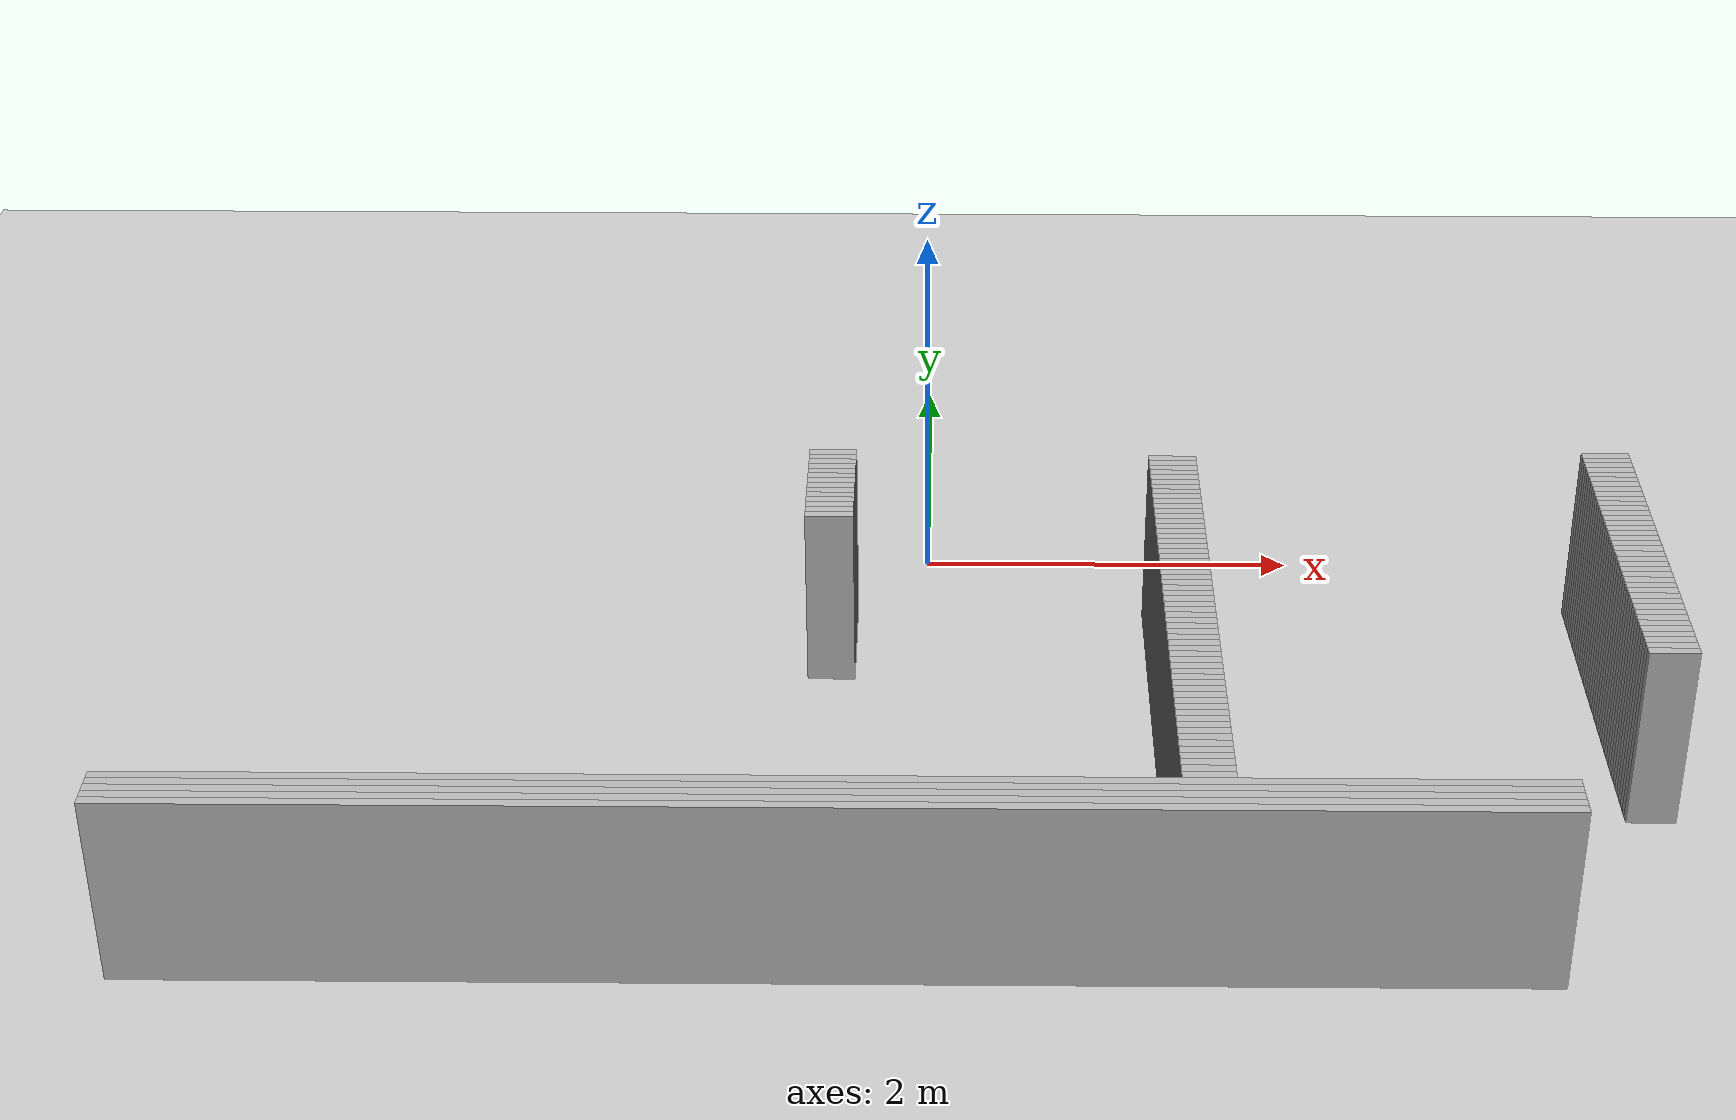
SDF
<sdf version="1.6">
 <world name="maze">
  <include><uri>model://ground_plane</uri></include>
  <include><uri>model://sun</uri></include>
  <model name="wall_63_85">
   <static>true</static>
   <pose>-0.5 -0.5 0.5 0 0 0</pose>
   <link name="link">
    <collision name="collision"><geometry><box><size>0.25 0.05 1.0</size></box></geometry></collision>
    <visual name="visual"><geometry><box><size>0.25 0.05 1.0</size></box></geometry></visual>
   </link>
  </model>
  <model name="wall_145_85">
   <static>true</static>
   <pose>3.6 -0.5 0.5 0 0 0</pose>
   <link name="link">
    <collision name="collision"><geometry><box><size>0.25 0.05 1.0</size></box></geometry></collision>
    <visual name="visual"><geometry><box><size>0.25 0.05 1.0</size></box></geometry></visual>
   </link>
  </model>
  <model name="wall_63_86">
   <static>true</static>
   <pose>-0.5 -0.55 0.5 0 0 0</pose>
   <link name="link">
    <collision name="collision"><geometry><box><size>0.25 0.05 1.0</size></box></geometry></collision>
    <visual name="visual"><geometry><box><size>0.25 0.05 1.0</size></box></geometry></visual>
   </link>
  </model>
  <model name="wall_99_86">
   <static>true</static>
   <pose>1.3 -0.55 0.5 0 0 0</pose>
   <link name="link">
    <collision name="collision"><geometry><box><size>0.25 0.05 1.0</size></box></geometry></collision>
    <visual name="visual"><geometry><box><size>0.25 0.05 1.0</size></box></geometry></visual>
   </link>
  </model>
  <model name="wall_145_86">
   <static>true</static>
   <pose>3.6 -0.55 0.5 0 0 0</pose>
   <link name="link">
    <collision name="collision"><geometry><box><size>0.25 0.05 1.0</size></box></geometry></collision>
    <visual name="visual"><geometry><box><size>0.25 0.05 1.0</size></box></geometry></visual>
   </link>
  </model>
  <model name="wall_63_87">
   <static>true</static>
   <pose>-0.5 -0.6000000000000001 0.5 0 0 0</pose>
   <link name="link">
    <collision name="collision"><geometry><box><size>0.25 0.05 1.0</size></box></geometry></collision>
    <visual name="visual"><geometry><box><size>0.25 0.05 1.0</size></box></geometry></visual>
   </link>
  </model>
  <model name="wall_99_87">
   <static>true</static>
   <pose>1.3 -0.6000000000000001 0.5 0 0 0</pose>
   <link name="link">
    <collision name="collision"><geometry><box><size>0.25 0.05 1.0</size></box></geometry></collision>
    <visual name="visual"><geometry><box><size>0.25 0.05 1.0</size></box></geometry></visual>
   </link>
  </model>
  <model name="wall_145_87">
   <static>true</static>
   <pose>3.6 -0.6000000000000001 0.5 0 0 0</pose>
   <link name="link">
    <collision name="collision"><geometry><box><size>0.25 0.05 1.0</size></box></geometry></collision>
    <visual name="visual"><geometry><box><size>0.25 0.05 1.0</size></box></geometry></visual>
   </link>
  </model>
  <model name="wall_63_88">
   <static>true</static>
   <pose>-0.5 -0.65 0.5 0 0 0</pose>
   <link name="link">
    <collision name="collision"><geometry><box><size>0.25 0.05 1.0</size></box></geometry></collision>
    <visual name="visual"><geometry><box><size>0.25 0.05 1.0</size></box></geometry></visual>
   </link>
  </model>
  <model name="wall_99_88">
   <static>true</static>
   <pose>1.3 -0.65 0.5 0 0 0</pose>
   <link name="link">
    <collision name="collision"><geometry><box><size>0.25 0.05 1.0</size></box></geometry></collision>
    <visual name="visual"><geometry><box><size>0.25 0.05 1.0</size></box></geometry></visual>
   </link>
  </model>
  <model name="wall_145_88">
   <static>true</static>
   <pose>3.6 -0.65 0.5 0 0 0</pose>
   <link name="link">
    <collision name="collision"><geometry><box><size>0.25 0.05 1.0</size></box></geometry></collision>
    <visual name="visual"><geometry><box><size>0.25 0.05 1.0</size></box></geometry></visual>
   </link>
  </model>
  <model name="wall_63_89">
   <static>true</static>
   <pose>-0.5 -0.7000000000000001 0.5 0 0 0</pose>
   <link name="link">
    <collision name="collision"><geometry><box><size>0.25 0.05 1.0</size></box></geometry></collision>
    <visual name="visual"><geometry><box><size>0.25 0.05 1.0</size></box></geometry></visual>
   </link>
  </model>
  <model name="wall_99_89">
   <static>true</static>
   <pose>1.3 -0.7000000000000001 0.5 0 0 0</pose>
   <link name="link">
    <collision name="collision"><geometry><box><size>0.25 0.05 1.0</size></box></geometry></collision>
    <visual name="visual"><geometry><box><size>0.25 0.05 1.0</size></box></geometry></visual>
   </link>
  </model>
  <model name="wall_145_89">
   <static>true</static>
   <pose>3.6 -0.7000000000000001 0.5 0 0 0</pose>
   <link name="link">
    <collision name="collision"><geometry><box><size>0.25 0.05 1.0</size></box></geometry></collision>
    <visual name="visual"><geometry><box><size>0.25 0.05 1.0</size></box></geometry></visual>
   </link>
  </model>
  <model name="wall_63_90">
   <static>true</static>
   <pose>-0.5 -0.75 0.5 0 0 0</pose>
   <link name="link">
    <collision name="collision"><geometry><box><size>0.25 0.05 1.0</size></box></geometry></collision>
    <visual name="visual"><geometry><box><size>0.25 0.05 1.0</size></box></geometry></visual>
   </link>
  </model>
  <model name="wall_99_90">
   <static>true</static>
   <pose>1.3 -0.75 0.5 0 0 0</pose>
   <link name="link">
    <collision name="collision"><geometry><box><size>0.25 0.05 1.0</size></box></geometry></collision>
    <visual name="visual"><geometry><box><size>0.25 0.05 1.0</size></box></geometry></visual>
   </link>
  </model>
  <model name="wall_145_90">
   <static>true</static>
   <pose>3.6 -0.75 0.5 0 0 0</pose>
   <link name="link">
    <collision name="collision"><geometry><box><size>0.25 0.05 1.0</size></box></geometry></collision>
    <visual name="visual"><geometry><box><size>0.25 0.05 1.0</size></box></geometry></visual>
   </link>
  </model>
  <model name="wall_63_91">
   <static>true</static>
   <pose>-0.5 -0.8 0.5 0 0 0</pose>
   <link name="link">
    <collision name="collision"><geometry><box><size>0.25 0.05 1.0</size></box></geometry></collision>
    <visual name="visual"><geometry><box><size>0.25 0.05 1.0</size></box></geometry></visual>
   </link>
  </model>
  <model name="wall_99_91">
   <static>true</static>
   <pose>1.3 -0.8 0.5 0 0 0</pose>
   <link name="link">
    <collision name="collision"><geometry><box><size>0.25 0.05 1.0</size></box></geometry></collision>
    <visual name="visual"><geometry><box><size>0.25 0.05 1.0</size></box></geometry></visual>
   </link>
  </model>
  <model name="wall_145_91">
   <static>true</static>
   <pose>3.6 -0.8 0.5 0 0 0</pose>
   <link name="link">
    <collision name="collision"><geometry><box><size>0.25 0.05 1.0</size></box></geometry></collision>
    <visual name="visual"><geometry><box><size>0.25 0.05 1.0</size></box></geometry></visual>
   </link>
  </model>
  <model name="wall_63_92">
   <static>true</static>
   <pose>-0.5 -0.8500000000000001 0.5 0 0 0</pose>
   <link name="link">
    <collision name="collision"><geometry><box><size>0.25 0.05 1.0</size></box></geometry></collision>
    <visual name="visual"><geometry><box><size>0.25 0.05 1.0</size></box></geometry></visual>
   </link>
  </model>
  <model name="wall_99_92">
   <static>true</static>
   <pose>1.3 -0.8500000000000001 0.5 0 0 0</pose>
   <link name="link">
    <collision name="collision"><geometry><box><size>0.25 0.05 1.0</size></box></geometry></collision>
    <visual name="visual"><geometry><box><size>0.25 0.05 1.0</size></box></geometry></visual>
   </link>
  </model>
  <model name="wall_145_92">
   <static>true</static>
   <pose>3.6 -0.8500000000000001 0.5 0 0 0</pose>
   <link name="link">
    <collision name="collision"><geometry><box><size>0.25 0.05 1.0</size></box></geometry></collision>
    <visual name="visual"><geometry><box><size>0.25 0.05 1.0</size></box></geometry></visual>
   </link>
  </model>
  <model name="wall_63_93">
   <static>true</static>
   <pose>-0.5 -0.9 0.5 0 0 0</pose>
   <link name="link">
    <collision name="collision"><geometry><box><size>0.25 0.05 1.0</size></box></geometry></collision>
    <visual name="visual"><geometry><box><size>0.25 0.05 1.0</size></box></geometry></visual>
   </link>
  </model>
  <model name="wall_99_93">
   <static>true</static>
   <pose>1.3 -0.9 0.5 0 0 0</pose>
   <link name="link">
    <collision name="collision"><geometry><box><size>0.25 0.05 1.0</size></box></geometry></collision>
    <visual name="visual"><geometry><box><size>0.25 0.05 1.0</size></box></geometry></visual>
   </link>
  </model>
  <model name="wall_145_93">
   <static>true</static>
   <pose>3.6 -0.9 0.5 0 0 0</pose>
   <link name="link">
    <collision name="collision"><geometry><box><size>0.25 0.05 1.0</size></box></geometry></collision>
    <visual name="visual"><geometry><box><size>0.25 0.05 1.0</size></box></geometry></visual>
   </link>
  </model>
  <model name="wall_63_94">
   <static>true</static>
   <pose>-0.5 -0.9500000000000001 0.5 0 0 0</pose>
   <link name="link">
    <collision name="collision"><geometry><box><size>0.25 0.05 1.0</size></box></geometry></collision>
    <visual name="visual"><geometry><box><size>0.25 0.05 1.0</size></box></geometry></visual>
   </link>
  </model>
  <model name="wall_99_94">
   <static>true</static>
   <pose>1.3 -0.9500000000000001 0.5 0 0 0</pose>
   <link name="link">
    <collision name="collision"><geometry><box><size>0.25 0.05 1.0</size></box></geometry></collision>
    <visual name="visual"><geometry><box><size>0.25 0.05 1.0</size></box></geometry></visual>
   </link>
  </model>
  <model name="wall_145_94">
   <static>true</static>
   <pose>3.6 -0.9500000000000001 0.5 0 0 0</pose>
   <link name="link">
    <collision name="collision"><geometry><box><size>0.25 0.05 1.0</size></box></geometry></collision>
    <visual name="visual"><geometry><box><size>0.25 0.05 1.0</size></box></geometry></visual>
   </link>
  </model>
  <model name="wall_63_95">
   <static>true</static>
   <pose>-0.5 -1.0 0.5 0 0 0</pose>
   <link name="link">
    <collision name="collision"><geometry><box><size>0.25 0.05 1.0</size></box></geometry></collision>
    <visual name="visual"><geometry><box><size>0.25 0.05 1.0</size></box></geometry></visual>
   </link>
  </model>
  <model name="wall_99_95">
   <static>true</static>
   <pose>1.3 -1.0 0.5 0 0 0</pose>
   <link name="link">
    <collision name="collision"><geometry><box><size>0.25 0.05 1.0</size></box></geometry></collision>
    <visual name="visual"><geometry><box><size>0.25 0.05 1.0</size></box></geometry></visual>
   </link>
  </model>
  <model name="wall_145_95">
   <static>true</static>
   <pose>3.6 -1.0 0.5 0 0 0</pose>
   <link name="link">
    <collision name="collision"><geometry><box><size>0.25 0.05 1.0</size></box></geometry></collision>
    <visual name="visual"><geometry><box><size>0.25 0.05 1.0</size></box></geometry></visual>
   </link>
  </model>
  <model name="wall_63_96">
   <static>true</static>
   <pose>-0.5 -1.05 0.5 0 0 0</pose>
   <link name="link">
    <collision name="collision"><geometry><box><size>0.25 0.05 1.0</size></box></geometry></collision>
    <visual name="visual"><geometry><box><size>0.25 0.05 1.0</size></box></geometry></visual>
   </link>
  </model>
  <model name="wall_99_96">
   <static>true</static>
   <pose>1.3 -1.05 0.5 0 0 0</pose>
   <link name="link">
    <collision name="collision"><geometry><box><size>0.25 0.05 1.0</size></box></geometry></collision>
    <visual name="visual"><geometry><box><size>0.25 0.05 1.0</size></box></geometry></visual>
   </link>
  </model>
  <model name="wall_145_96">
   <static>true</static>
   <pose>3.6 -1.05 0.5 0 0 0</pose>
   <link name="link">
    <collision name="collision"><geometry><box><size>0.25 0.05 1.0</size></box></geometry></collision>
    <visual name="visual"><geometry><box><size>0.25 0.05 1.0</size></box></geometry></visual>
   </link>
  </model>
  <model name="wall_63_97">
   <static>true</static>
   <pose>-0.5 -1.1 0.5 0 0 0</pose>
   <link name="link">
    <collision name="collision"><geometry><box><size>0.25 0.05 1.0</size></box></geometry></collision>
    <visual name="visual"><geometry><box><size>0.25 0.05 1.0</size></box></geometry></visual>
   </link>
  </model>
  <model name="wall_99_97">
   <static>true</static>
   <pose>1.3 -1.1 0.5 0 0 0</pose>
   <link name="link">
    <collision name="collision"><geometry><box><size>0.25 0.05 1.0</size></box></geometry></collision>
    <visual name="visual"><geometry><box><size>0.25 0.05 1.0</size></box></geometry></visual>
   </link>
  </model>
  <model name="wall_145_97">
   <static>true</static>
   <pose>3.6 -1.1 0.5 0 0 0</pose>
   <link name="link">
    <collision name="collision"><geometry><box><size>0.25 0.05 1.0</size></box></geometry></collision>
    <visual name="visual"><geometry><box><size>0.25 0.05 1.0</size></box></geometry></visual>
   </link>
  </model>
  <model name="wall_63_98">
   <static>true</static>
   <pose>-0.5 -1.1500000000000001 0.5 0 0 0</pose>
   <link name="link">
    <collision name="collision"><geometry><box><size>0.25 0.05 1.0</size></box></geometry></collision>
    <visual name="visual"><geometry><box><size>0.25 0.05 1.0</size></box></geometry></visual>
   </link>
  </model>
  <model name="wall_99_98">
   <static>true</static>
   <pose>1.3 -1.1500000000000001 0.5 0 0 0</pose>
   <link name="link">
    <collision name="collision"><geometry><box><size>0.25 0.05 1.0</size></box></geometry></collision>
    <visual name="visual"><geometry><box><size>0.25 0.05 1.0</size></box></geometry></visual>
   </link>
  </model>
  <model name="wall_145_98">
   <static>true</static>
   <pose>3.6 -1.1500000000000001 0.5 0 0 0</pose>
   <link name="link">
    <collision name="collision"><geometry><box><size>0.25 0.05 1.0</size></box></geometry></collision>
    <visual name="visual"><geometry><box><size>0.25 0.05 1.0</size></box></geometry></visual>
   </link>
  </model>
  <model name="wall_99_99">
   <static>true</static>
   <pose>1.3 -1.2000000000000002 0.5 0 0 0</pose>
   <link name="link">
    <collision name="collision"><geometry><box><size>0.25 0.05 1.0</size></box></geometry></collision>
    <visual name="visual"><geometry><box><size>0.25 0.05 1.0</size></box></geometry></visual>
   </link>
  </model>
  <model name="wall_145_99">
   <static>true</static>
   <pose>3.6 -1.2000000000000002 0.5 0 0 0</pose>
   <link name="link">
    <collision name="collision"><geometry><box><size>0.25 0.05 1.0</size></box></geometry></collision>
    <visual name="visual"><geometry><box><size>0.25 0.05 1.0</size></box></geometry></visual>
   </link>
  </model>
  <model name="wall_99_100">
   <static>true</static>
   <pose>1.3 -1.25 0.5 0 0 0</pose>
   <link name="link">
    <collision name="collision"><geometry><box><size>0.25 0.05 1.0</size></box></geometry></collision>
    <visual name="visual"><geometry><box><size>0.25 0.05 1.0</size></box></geometry></visual>
   </link>
  </model>
  <model name="wall_145_100">
   <static>true</static>
   <pose>3.6 -1.25 0.5 0 0 0</pose>
   <link name="link">
    <collision name="collision"><geometry><box><size>0.25 0.05 1.0</size></box></geometry></collision>
    <visual name="visual"><geometry><box><size>0.25 0.05 1.0</size></box></geometry></visual>
   </link>
  </model>
  <model name="wall_99_101">
   <static>true</static>
   <pose>1.3 -1.3 0.5 0 0 0</pose>
   <link name="link">
    <collision name="collision"><geometry><box><size>0.25 0.05 1.0</size></box></geometry></collision>
    <visual name="visual"><geometry><box><size>0.25 0.05 1.0</size></box></geometry></visual>
   </link>
  </model>
  <model name="wall_145_101">
   <static>true</static>
   <pose>3.6 -1.3 0.5 0 0 0</pose>
   <link name="link">
    <collision name="collision"><geometry><box><size>0.25 0.05 1.0</size></box></geometry></collision>
    <visual name="visual"><geometry><box><size>0.25 0.05 1.0</size></box></geometry></visual>
   </link>
  </model>
  <model name="wall_99_102">
   <static>true</static>
   <pose>1.3 -1.35 0.5 0 0 0</pose>
   <link name="link">
    <collision name="collision"><geometry><box><size>0.25 0.05 1.0</size></box></geometry></collision>
    <visual name="visual"><geometry><box><size>0.25 0.05 1.0</size></box></geometry></visual>
   </link>
  </model>
  <model name="wall_145_102">
   <static>true</static>
   <pose>3.6 -1.35 0.5 0 0 0</pose>
   <link name="link">
    <collision name="collision"><geometry><box><size>0.25 0.05 1.0</size></box></geometry></collision>
    <visual name="visual"><geometry><box><size>0.25 0.05 1.0</size></box></geometry></visual>
   </link>
  </model>
  <model name="wall_99_103">
   <static>true</static>
   <pose>1.3 -1.4000000000000001 0.5 0 0 0</pose>
   <link name="link">
    <collision name="collision"><geometry><box><size>0.25 0.05 1.0</size></box></geometry></collision>
    <visual name="visual"><geometry><box><size>0.25 0.05 1.0</size></box></geometry></visual>
   </link>
  </model>
  <model name="wall_145_103">
   <static>true</static>
   <pose>3.6 -1.4000000000000001 0.5 0 0 0</pose>
   <link name="link">
    <collision name="collision"><geometry><box><size>0.25 0.05 1.0</size></box></geometry></collision>
    <visual name="visual"><geometry><box><size>0.25 0.05 1.0</size></box></geometry></visual>
   </link>
  </model>
  <model name="wall_99_104">
   <static>true</static>
   <pose>1.3 -1.4500000000000002 0.5 0 0 0</pose>
   <link name="link">
    <collision name="collision"><geometry><box><size>0.25 0.05 1.0</size></box></geometry></collision>
    <visual name="visual"><geometry><box><size>0.25 0.05 1.0</size></box></geometry></visual>
   </link>
  </model>
  <model name="wall_145_104">
   <static>true</static>
   <pose>3.6 -1.4500000000000002 0.5 0 0 0</pose>
   <link name="link">
    <collision name="collision"><geometry><box><size>0.25 0.05 1.0</size></box></geometry></collision>
    <visual name="visual"><geometry><box><size>0.25 0.05 1.0</size></box></geometry></visual>
   </link>
  </model>
  <model name="wall_99_105">
   <static>true</static>
   <pose>1.3 -1.5 0.5 0 0 0</pose>
   <link name="link">
    <collision name="collision"><geometry><box><size>0.25 0.05 1.0</size></box></geometry></collision>
    <visual name="visual"><geometry><box><size>0.25 0.05 1.0</size></box></geometry></visual>
   </link>
  </model>
  <model name="wall_145_105">
   <static>true</static>
   <pose>3.6 -1.5 0.5 0 0 0</pose>
   <link name="link">
    <collision name="collision"><geometry><box><size>0.25 0.05 1.0</size></box></geometry></collision>
    <visual name="visual"><geometry><box><size>0.25 0.05 1.0</size></box></geometry></visual>
   </link>
  </model>
  <model name="wall_99_106">
   <static>true</static>
   <pose>1.3 -1.55 0.5 0 0 0</pose>
   <link name="link">
    <collision name="collision"><geometry><box><size>0.25 0.05 1.0</size></box></geometry></collision>
    <visual name="visual"><geometry><box><size>0.25 0.05 1.0</size></box></geometry></visual>
   </link>
  </model>
  <model name="wall_145_106">
   <static>true</static>
   <pose>3.6 -1.55 0.5 0 0 0</pose>
   <link name="link">
    <collision name="collision"><geometry><box><size>0.25 0.05 1.0</size></box></geometry></collision>
    <visual name="visual"><geometry><box><size>0.25 0.05 1.0</size></box></geometry></visual>
   </link>
  </model>
  <model name="wall_99_107">
   <static>true</static>
   <pose>1.3 -1.6 0.5 0 0 0</pose>
   <link name="link">
    <collision name="collision"><geometry><box><size>0.25 0.05 1.0</size></box></geometry></collision>
    <visual name="visual"><geometry><box><size>0.25 0.05 1.0</size></box></geometry></visual>
   </link>
  </model>
  <model name="wall_145_107">
   <static>true</static>
   <pose>3.6 -1.6 0.5 0 0 0</pose>
   <link name="link">
    <collision name="collision"><geometry><box><size>0.25 0.05 1.0</size></box></geometry></collision>
    <visual name="visual"><geometry><box><size>0.25 0.05 1.0</size></box></geometry></visual>
   </link>
  </model>
  <model name="wall_99_108">
   <static>true</static>
   <pose>1.3 -1.6500000000000001 0.5 0 0 0</pose>
   <link name="link">
    <collision name="collision"><geometry><box><size>0.25 0.05 1.0</size></box></geometry></collision>
    <visual name="visual"><geometry><box><size>0.25 0.05 1.0</size></box></geometry></visual>
   </link>
  </model>
  <model name="wall_145_108">
   <static>true</static>
   <pose>3.6 -1.6500000000000001 0.5 0 0 0</pose>
   <link name="link">
    <collision name="collision"><geometry><box><size>0.25 0.05 1.0</size></box></geometry></collision>
    <visual name="visual"><geometry><box><size>0.25 0.05 1.0</size></box></geometry></visual>
   </link>
  </model>
  <model name="wall_99_109">
   <static>true</static>
   <pose>1.3 -1.7000000000000002 0.5 0 0 0</pose>
   <link name="link">
    <collision name="collision"><geometry><box><size>0.25 0.05 1.0</size></box></geometry></collision>
    <visual name="visual"><geometry><box><size>0.25 0.05 1.0</size></box></geometry></visual>
   </link>
  </model>
  <model name="wall_145_109">
   <static>true</static>
   <pose>3.6 -1.7000000000000002 0.5 0 0 0</pose>
   <link name="link">
    <collision name="collision"><geometry><box><size>0.25 0.05 1.0</size></box></geometry></collision>
    <visual name="visual"><geometry><box><size>0.25 0.05 1.0</size></box></geometry></visual>
   </link>
  </model>
  <model name="wall_99_110">
   <static>true</static>
   <pose>1.3 -1.75 0.5 0 0 0</pose>
   <link name="link">
    <collision name="collision"><geometry><box><size>0.25 0.05 1.0</size></box></geometry></collision>
    <visual name="visual"><geometry><box><size>0.25 0.05 1.0</size></box></geometry></visual>
   </link>
  </model>
  <model name="wall_145_110">
   <static>true</static>
   <pose>3.6 -1.75 0.5 0 0 0</pose>
   <link name="link">
    <collision name="collision"><geometry><box><size>0.25 0.05 1.0</size></box></geometry></collision>
    <visual name="visual"><geometry><box><size>0.25 0.05 1.0</size></box></geometry></visual>
   </link>
  </model>
  <model name="wall_99_111">
   <static>true</static>
   <pose>1.3 -1.8 0.5 0 0 0</pose>
   <link name="link">
    <collision name="collision"><geometry><box><size>0.25 0.05 1.0</size></box></geometry></collision>
    <visual name="visual"><geometry><box><size>0.25 0.05 1.0</size></box></geometry></visual>
   </link>
  </model>
  <model name="wall_145_111">
   <static>true</static>
   <pose>3.6 -1.8 0.5 0 0 0</pose>
   <link name="link">
    <collision name="collision"><geometry><box><size>0.25 0.05 1.0</size></box></geometry></collision>
    <visual name="visual"><geometry><box><size>0.25 0.05 1.0</size></box></geometry></visual>
   </link>
  </model>
  <model name="wall_99_112">
   <static>true</static>
   <pose>1.3 -1.85 0.5 0 0 0</pose>
   <link name="link">
    <collision name="collision"><geometry><box><size>0.25 0.05 1.0</size></box></geometry></collision>
    <visual name="visual"><geometry><box><size>0.25 0.05 1.0</size></box></geometry></visual>
   </link>
  </model>
  <model name="wall_145_112">
   <static>true</static>
   <pose>3.6 -1.85 0.5 0 0 0</pose>
   <link name="link">
    <collision name="collision"><geometry><box><size>0.25 0.05 1.0</size></box></geometry></collision>
    <visual name="visual"><geometry><box><size>0.25 0.05 1.0</size></box></geometry></visual>
   </link>
  </model>
  <model name="wall_99_113">
   <static>true</static>
   <pose>1.3 -1.9000000000000001 0.5 0 0 0</pose>
   <link name="link">
    <collision name="collision"><geometry><box><size>0.25 0.05 1.0</size></box></geometry></collision>
    <visual name="visual"><geometry><box><size>0.25 0.05 1.0</size></box></geometry></visual>
   </link>
  </model>
  <model name="wall_145_113">
   <static>true</static>
   <pose>3.6 -1.9000000000000001 0.5 0 0 0</pose>
   <link name="link">
    <collision name="collision"><geometry><box><size>0.25 0.05 1.0</size></box></geometry></collision>
    <visual name="visual"><geometry><box><size>0.25 0.05 1.0</size></box></geometry></visual>
   </link>
  </model>
  <model name="wall_99_114">
   <static>true</static>
   <pose>1.3 -1.9500000000000002 0.5 0 0 0</pose>
   <link name="link">
    <collision name="collision"><geometry><box><size>0.25 0.05 1.0</size></box></geometry></collision>
    <visual name="visual"><geometry><box><size>0.25 0.05 1.0</size></box></geometry></visual>
   </link>
  </model>
  <model name="wall_145_114">
   <static>true</static>
   <pose>3.6 -1.9500000000000002 0.5 0 0 0</pose>
   <link name="link">
    <collision name="collision"><geometry><box><size>0.25 0.05 1.0</size></box></geometry></collision>
    <visual name="visual"><geometry><box><size>0.25 0.05 1.0</size></box></geometry></visual>
   </link>
  </model>
  <model name="wall_99_115">
   <static>true</static>
   <pose>1.3 -2.0 0.5 0 0 0</pose>
   <link name="link">
    <collision name="collision"><geometry><box><size>0.25 0.05 1.0</size></box></geometry></collision>
    <visual name="visual"><geometry><box><size>0.25 0.05 1.0</size></box></geometry></visual>
   </link>
  </model>
  <model name="wall_145_115">
   <static>true</static>
   <pose>3.6 -2.0 0.5 0 0 0</pose>
   <link name="link">
    <collision name="collision"><geometry><box><size>0.25 0.05 1.0</size></box></geometry></collision>
    <visual name="visual"><geometry><box><size>0.25 0.05 1.0</size></box></geometry></visual>
   </link>
  </model>
  <model name="wall_99_116">
   <static>true</static>
   <pose>1.3 -2.0500000000000003 0.5 0 0 0</pose>
   <link name="link">
    <collision name="collision"><geometry><box><size>0.25 0.05 1.0</size></box></geometry></collision>
    <visual name="visual"><geometry><box><size>0.25 0.05 1.0</size></box></geometry></visual>
   </link>
  </model>
  <model name="wall_145_116">
   <static>true</static>
   <pose>3.6 -2.0500000000000003 0.5 0 0 0</pose>
   <link name="link">
    <collision name="collision"><geometry><box><size>0.25 0.05 1.0</size></box></geometry></collision>
    <visual name="visual"><geometry><box><size>0.25 0.05 1.0</size></box></geometry></visual>
   </link>
  </model>
  <model name="wall_99_117">
   <static>true</static>
   <pose>1.3 -2.1 0.5 0 0 0</pose>
   <link name="link">
    <collision name="collision"><geometry><box><size>0.25 0.05 1.0</size></box></geometry></collision>
    <visual name="visual"><geometry><box><size>0.25 0.05 1.0</size></box></geometry></visual>
   </link>
  </model>
  <model name="wall_145_117">
   <static>true</static>
   <pose>3.6 -2.1 0.5 0 0 0</pose>
   <link name="link">
    <collision name="collision"><geometry><box><size>0.25 0.05 1.0</size></box></geometry></collision>
    <visual name="visual"><geometry><box><size>0.25 0.05 1.0</size></box></geometry></visual>
   </link>
  </model>
  <model name="wall_99_118">
   <static>true</static>
   <pose>1.3 -2.15 0.5 0 0 0</pose>
   <link name="link">
    <collision name="collision"><geometry><box><size>0.25 0.05 1.0</size></box></geometry></collision>
    <visual name="visual"><geometry><box><size>0.25 0.05 1.0</size></box></geometry></visual>
   </link>
  </model>
  <model name="wall_145_118">
   <static>true</static>
   <pose>3.6 -2.15 0.5 0 0 0</pose>
   <link name="link">
    <collision name="collision"><geometry><box><size>0.25 0.05 1.0</size></box></geometry></collision>
    <visual name="visual"><geometry><box><size>0.25 0.05 1.0</size></box></geometry></visual>
   </link>
  </model>
  <model name="wall_99_119">
   <static>true</static>
   <pose>1.3 -2.2 0.5 0 0 0</pose>
   <link name="link">
    <collision name="collision"><geometry><box><size>0.25 0.05 1.0</size></box></geometry></collision>
    <visual name="visual"><geometry><box><size>0.25 0.05 1.0</size></box></geometry></visual>
   </link>
  </model>
  <model name="wall_145_119">
   <static>true</static>
   <pose>3.6 -2.2 0.5 0 0 0</pose>
   <link name="link">
    <collision name="collision"><geometry><box><size>0.25 0.05 1.0</size></box></geometry></collision>
    <visual name="visual"><geometry><box><size>0.25 0.05 1.0</size></box></geometry></visual>
   </link>
  </model>
  <model name="wall_99_120">
   <static>true</static>
   <pose>1.3 -2.25 0.5 0 0 0</pose>
   <link name="link">
    <collision name="collision"><geometry><box><size>0.25 0.05 1.0</size></box></geometry></collision>
    <visual name="visual"><geometry><box><size>0.25 0.05 1.0</size></box></geometry></visual>
   </link>
  </model>
  <model name="wall_145_120">
   <static>true</static>
   <pose>3.6 -2.25 0.5 0 0 0</pose>
   <link name="link">
    <collision name="collision"><geometry><box><size>0.25 0.05 1.0</size></box></geometry></collision>
    <visual name="visual"><geometry><box><size>0.25 0.05 1.0</size></box></geometry></visual>
   </link>
  </model>
  <model name="wall_99_121">
   <static>true</static>
   <pose>1.3 -2.3000000000000003 0.5 0 0 0</pose>
   <link name="link">
    <collision name="collision"><geometry><box><size>0.25 0.05 1.0</size></box></geometry></collision>
    <visual name="visual"><geometry><box><size>0.25 0.05 1.0</size></box></geometry></visual>
   </link>
  </model>
  <model name="wall_145_121">
   <static>true</static>
   <pose>3.6 -2.3000000000000003 0.5 0 0 0</pose>
   <link name="link">
    <collision name="collision"><geometry><box><size>0.25 0.05 1.0</size></box></geometry></collision>
    <visual name="visual"><geometry><box><size>0.25 0.05 1.0</size></box></geometry></visual>
   </link>
  </model>
  <model name="wall_99_122">
   <static>true</static>
   <pose>1.3 -2.35 0.5 0 0 0</pose>
   <link name="link">
    <collision name="collision"><geometry><box><size>0.25 0.05 1.0</size></box></geometry></collision>
    <visual name="visual"><geometry><box><size>0.25 0.05 1.0</size></box></geometry></visual>
   </link>
  </model>
  <model name="wall_145_122">
   <static>true</static>
   <pose>3.6 -2.35 0.5 0 0 0</pose>
   <link name="link">
    <collision name="collision"><geometry><box><size>0.25 0.05 1.0</size></box></geometry></collision>
    <visual name="visual"><geometry><box><size>0.25 0.05 1.0</size></box></geometry></visual>
   </link>
  </model>
  <model name="wall_99_123">
   <static>true</static>
   <pose>1.3 -2.4000000000000004 0.5 0 0 0</pose>
   <link name="link">
    <collision name="collision"><geometry><box><size>0.25 0.05 1.0</size></box></geometry></collision>
    <visual name="visual"><geometry><box><size>0.25 0.05 1.0</size></box></geometry></visual>
   </link>
  </model>
  <model name="wall_145_123">
   <static>true</static>
   <pose>3.6 -2.4000000000000004 0.5 0 0 0</pose>
   <link name="link">
    <collision name="collision"><geometry><box><size>0.25 0.05 1.0</size></box></geometry></collision>
    <visual name="visual"><geometry><box><size>0.25 0.05 1.0</size></box></geometry></visual>
   </link>
  </model>
  <model name="wall_99_124">
   <static>true</static>
   <pose>1.3 -2.45 0.5 0 0 0</pose>
   <link name="link">
    <collision name="collision"><geometry><box><size>0.25 0.05 1.0</size></box></geometry></collision>
    <visual name="visual"><geometry><box><size>0.25 0.05 1.0</size></box></geometry></visual>
   </link>
  </model>
  <model name="wall_99_125">
   <static>true</static>
   <pose>1.3 -2.5 0.5 0 0 0</pose>
   <link name="link">
    <collision name="collision"><geometry><box><size>0.25 0.05 1.0</size></box></geometry></collision>
    <visual name="visual"><geometry><box><size>0.25 0.05 1.0</size></box></geometry></visual>
   </link>
  </model>
  <model name="wall_99_126">
   <static>true</static>
   <pose>1.3 -2.5500000000000003 0.5 0 0 0</pose>
   <link name="link">
    <collision name="collision"><geometry><box><size>0.25 0.05 1.0</size></box></geometry></collision>
    <visual name="visual"><geometry><box><size>0.25 0.05 1.0</size></box></geometry></visual>
   </link>
  </model>
  <model name="wall_99_127">
   <static>true</static>
   <pose>1.3 -2.6 0.5 0 0 0</pose>
   <link name="link">
    <collision name="collision"><geometry><box><size>0.25 0.05 1.0</size></box></geometry></collision>
    <visual name="visual"><geometry><box><size>0.25 0.05 1.0</size></box></geometry></visual>
   </link>
  </model>
  <model name="wall_99_128">
   <static>true</static>
   <pose>1.3 -2.6500000000000004 0.5 0 0 0</pose>
   <link name="link">
    <collision name="collision"><geometry><box><size>0.25 0.05 1.0</size></box></geometry></collision>
    <visual name="visual"><geometry><box><size>0.25 0.05 1.0</size></box></geometry></visual>
   </link>
  </model>
  <model name="wall_99_129">
   <static>true</static>
   <pose>1.3 -2.7 0.5 0 0 0</pose>
   <link name="link">
    <collision name="collision"><geometry><box><size>0.25 0.05 1.0</size></box></geometry></collision>
    <visual name="visual"><geometry><box><size>0.25 0.05 1.0</size></box></geometry></visual>
   </link>
  </model>
  <model name="wall_99_130">
   <static>true</static>
   <pose>1.3 -2.75 0.5 0 0 0</pose>
   <link name="link">
    <collision name="collision"><geometry><box><size>0.25 0.05 1.0</size></box></geometry></collision>
    <visual name="visual"><geometry><box><size>0.25 0.05 1.0</size></box></geometry></visual>
   </link>
  </model>
  <model name="wall_99_131">
   <static>true</static>
   <pose>1.3 -2.8000000000000003 0.5 0 0 0</pose>
   <link name="link">
    <collision name="collision"><geometry><box><size>0.25 0.05 1.0</size></box></geometry></collision>
    <visual name="visual"><geometry><box><size>0.25 0.05 1.0</size></box></geometry></visual>
   </link>
  </model>
  <model name="wall_99_132">
   <static>true</static>
   <pose>1.3 -2.85 0.5 0 0 0</pose>
   <link name="link">
    <collision name="collision"><geometry><box><size>0.25 0.05 1.0</size></box></geometry></collision>
    <visual name="visual"><geometry><box><size>0.25 0.05 1.0</size></box></geometry></visual>
   </link>
  </model>
  <model name="wall_99_133">
   <static>true</static>
   <pose>1.3 -2.9000000000000004 0.5 0 0 0</pose>
   <link name="link">
    <collision name="collision"><geometry><box><size>0.25 0.05 1.0</size></box></geometry></collision>
    <visual name="visual"><geometry><box><size>0.25 0.05 1.0</size></box></geometry></visual>
   </link>
  </model>
  <model name="wall_99_134">
   <static>true</static>
   <pose>1.3 -2.95 0.5 0 0 0</pose>
   <link name="link">
    <collision name="collision"><geometry><box><size>0.25 0.05 1.0</size></box></geometry></collision>
    <visual name="visual"><geometry><box><size>0.25 0.05 1.0</size></box></geometry></visual>
   </link>
  </model>
  <model name="wall_99_135">
   <static>true</static>
   <pose>1.3 -3.0 0.5 0 0 0</pose>
   <link name="link">
    <collision name="collision"><geometry><box><size>0.25 0.05 1.0</size></box></geometry></collision>
    <visual name="visual"><geometry><box><size>0.25 0.05 1.0</size></box></geometry></visual>
   </link>
  </model>
  <model name="wall_99_136">
   <static>true</static>
   <pose>1.3 -3.0500000000000003 0.5 0 0 0</pose>
   <link name="link">
    <collision name="collision"><geometry><box><size>0.25 0.05 1.0</size></box></geometry></collision>
    <visual name="visual"><geometry><box><size>0.25 0.05 1.0</size></box></geometry></visual>
   </link>
  </model>
  <model name="wall_99_137">
   <static>true</static>
   <pose>1.3 -3.1 0.5 0 0 0</pose>
   <link name="link">
    <collision name="collision"><geometry><box><size>0.25 0.05 1.0</size></box></geometry></collision>
    <visual name="visual"><geometry><box><size>0.25 0.05 1.0</size></box></geometry></visual>
   </link>
  </model>
  <model name="wall_99_138">
   <static>true</static>
   <pose>1.3 -3.1500000000000004 0.5 0 0 0</pose>
   <link name="link">
    <collision name="collision"><geometry><box><size>0.25 0.05 1.0</size></box></geometry></collision>
    <visual name="visual"><geometry><box><size>0.25 0.05 1.0</size></box></geometry></visual>
   </link>
  </model>
  <model name="wall_99_139">
   <static>true</static>
   <pose>1.3 -3.2 0.5 0 0 0</pose>
   <link name="link">
    <collision name="collision"><geometry><box><size>0.25 0.05 1.0</size></box></geometry></collision>
    <visual name="visual"><geometry><box><size>0.25 0.05 1.0</size></box></geometry></visual>
   </link>
  </model>
  <model name="wall_99_140">
   <static>true</static>
   <pose>1.3 -3.25 0.5 0 0 0</pose>
   <link name="link">
    <collision name="collision"><geometry><box><size>0.25 0.05 1.0</size></box></geometry></collision>
    <visual name="visual"><geometry><box><size>0.25 0.05 1.0</size></box></geometry></visual>
   </link>
  </model>
  <model name="wall_99_141">
   <static>true</static>
   <pose>1.3 -3.3000000000000003 0.5 0 0 0</pose>
   <link name="link">
    <collision name="collision"><geometry><box><size>0.25 0.05 1.0</size></box></geometry></collision>
    <visual name="visual"><geometry><box><size>0.25 0.05 1.0</size></box></geometry></visual>
   </link>
  </model>
  <model name="wall_99_142">
   <static>true</static>
   <pose>1.3 -3.35 0.5 0 0 0</pose>
   <link name="link">
    <collision name="collision"><geometry><box><size>0.25 0.05 1.0</size></box></geometry></collision>
    <visual name="visual"><geometry><box><size>0.25 0.05 1.0</size></box></geometry></visual>
   </link>
  </model>
  <model name="wall_99_143">
   <static>true</static>
   <pose>1.3 -3.4000000000000004 0.5 0 0 0</pose>
   <link name="link">
    <collision name="collision"><geometry><box><size>0.25 0.05 1.0</size></box></geometry></collision>
    <visual name="visual"><geometry><box><size>0.25 0.05 1.0</size></box></geometry></visual>
   </link>
  </model>
  <model name="wall_99_144">
   <static>true</static>
   <pose>1.3 -3.45 0.5 0 0 0</pose>
   <link name="link">
    <collision name="collision"><geometry><box><size>0.25 0.05 1.0</size></box></geometry></collision>
    <visual name="visual"><geometry><box><size>0.25 0.05 1.0</size></box></geometry></visual>
   </link>
  </model>
  <model name="wall_0_145">
   <static>true</static>
   <pose>-0.4 -3.5 0.5 0 0 0</pose>
   <link name="link">
    <collision name="collision"><geometry><box><size>6.75 0.05 1.0</size></box></geometry></collision>
    <visual name="visual"><geometry><box><size>6.75 0.05 1.0</size></box></geometry></visual>
   </link>
  </model>
  <model name="wall_0_146">
   <static>true</static>
   <pose>-0.4 -3.5500000000000003 0.5 0 0 0</pose>
   <link name="link">
    <collision name="collision"><geometry><box><size>6.75 0.05 1.0</size></box></geometry></collision>
    <visual name="visual"><geometry><box><size>6.75 0.05 1.0</size></box></geometry></visual>
   </link>
  </model>
  <model name="wall_0_147">
   <static>true</static>
   <pose>-0.4 -3.6 0.5 0 0 0</pose>
   <link name="link">
    <collision name="collision"><geometry><box><size>6.75 0.05 1.0</size></box></geometry></collision>
    <visual name="visual"><geometry><box><size>6.75 0.05 1.0</size></box></geometry></visual>
   </link>
  </model>
  <model name="wall_0_148">
   <static>true</static>
   <pose>-0.4 -3.6500000000000004 0.5 0 0 0</pose>
   <link name="link">
    <collision name="collision"><geometry><box><size>6.75 0.05 1.0</size></box></geometry></collision>
    <visual name="visual"><geometry><box><size>6.75 0.05 1.0</size></box></geometry></visual>
   </link>
  </model>
  <model name="wall_0_149">
   <static>true</static>
   <pose>-0.4 -3.7 0.5 0 0 0</pose>
   <link name="link">
    <collision name="collision"><geometry><box><size>6.75 0.05 1.0</size></box></geometry></collision>
    <visual name="visual"><geometry><box><size>6.75 0.05 1.0</size></box></geometry></visual>
   </link>
  </model>
 </world>
</sdf>
